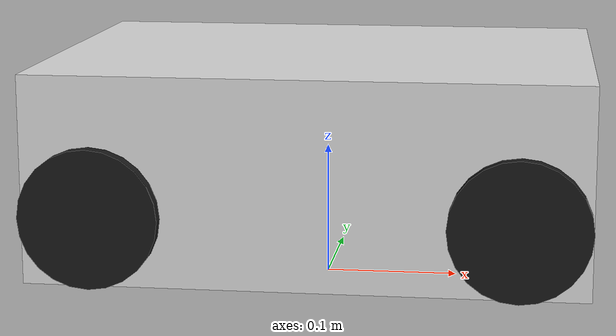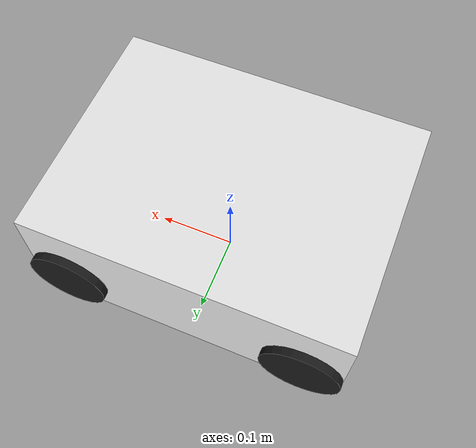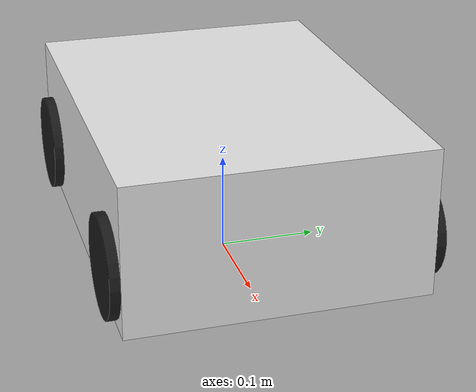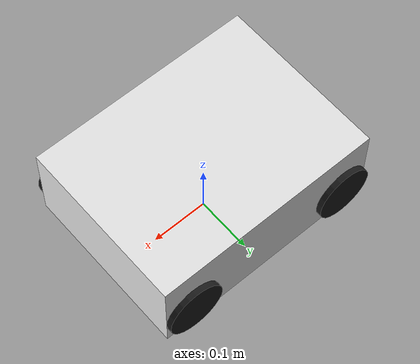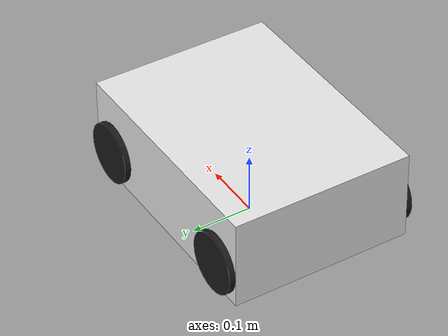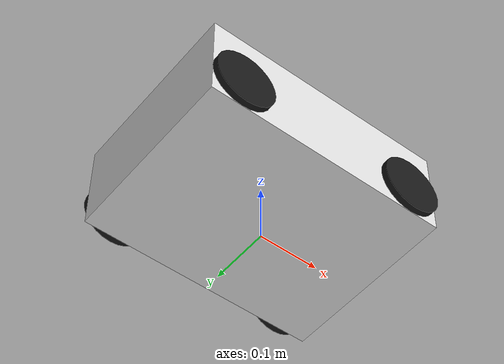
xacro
<?xml version="1.0"?>
<robot xmlns:xacro="http://www.ros.org/wiki/xacro" name="my_custom_robot">

  <xacro:property name="chassis_length" value="0.4" />
  <xacro:property name="chassis_width" value="0.3" />
  <xacro:property name="chassis_height" value="0.15" />
  <xacro:property name="chassis_mass" value="5.0" />
  <xacro:property name="base_color" value="White" />

  <xacro:property name="wheel_radius" value="0.05" />
  <xacro:property name="wheel_width" value="0.04" />
  <xacro:property name="wheel_mass" value="0.5" />
  <xacro:property name="wheel_color" value="Black" />

  <xacro:property name="wheelbase_x" value="0.3" />
  <xacro:property name="track_width" value="0.28" />
  <xacro:property name="wheel_z_offset" value="${-chassis_height/2 + wheel_radius}" />
  <xacro:property name="steer_link_length" value="0.02" />
  <xacro:property name="steer_link_radius" value="0.01" />
  <xacro:property name="steer_link_mass" value="0.1" />
  <xacro:property name="max_steer_angle" value="${pi/6}" />

  <xacro:macro name="box_inertia" params="m l w h">
    <inertia ixx="${m/12 * (h*h + l*l)}" ixy="0.0" ixz="0.0"
             iyy="${m/12 * (w*w + l*l)}" iyz="0.0"
             izz="${m/12 * (w*w + h*h)}" />
  </xacro:macro>

  <xacro:macro name="cylinder_inertia" params="m r h">
    <inertia ixx="${m/12 * (3*r*r + h*h)}" ixy="0.0" ixz="0.0"
             iyy="${m/12 * (3*r*r + h*h)}" iyz="0.0"
             izz="${m/2 * r*r}" />
  </xacro:macro>

  <xacro:macro name="sphere_inertia" params="m r">
    <inertia ixx="${2*m/5 * r*r}" ixy="0.0" ixz="0.0"
             iyy="${2*m/5 * r*r}" iyz="0.0"
             izz="${2*m/5 * r*r}" />
  </xacro:macro>

  <material name="PlasticWhite">
      <color rgba="0.9 0.9 0.9 1.0"/>
  </material>

  <material name="PlasticBlack">
      <color rgba="0.1 0.1 0.1 1.0"/>
  </material>

  <material name="PlasticRed">
      <color rgba="0.8 0.1 0.1 1.0"/>
  </material>

  <link name="base_footprint"/>

  <link name="base_link">
    <visual>
      <origin xyz="0 0 0" rpy="0 0 0" />
      <geometry>
        <box size="${chassis_length} ${chassis_width} ${chassis_height}"/>
      </geometry>
      <material name="PlasticWhite"/>
    </visual>
    <collision>
      <origin xyz="0 0 0" rpy="0 0 0" />
      <geometry>
        <box size="${chassis_length} ${chassis_width} ${chassis_height}"/>
      </geometry>
    </collision>
    <inertial>
      <origin xyz="0 0 0" rpy="0 0 0"/>
      <mass value="${chassis_mass}"/>
      <xacro:box_inertia m="${chassis_mass}" l="${chassis_length}" w="${chassis_width}" h="${chassis_height}" />
    </inertial>
  </link>

  <joint name="base_footprint_joint" type="fixed">
    <parent link="base_footprint"/>
    <child link="base_link"/>
    <origin xyz="0 0 ${chassis_height/2 - wheel_z_offset}" rpy="0 0 0"/>
  </joint>

  <xacro:macro name="wheel" params="prefix reflect">
    <link name="${prefix}_wheel_link">
      <visual>
        <origin xyz="0 0 0" rpy="${pi/2} 0 0" />
        <geometry>
          <cylinder radius="${wheel_radius}" length="${wheel_width}"/>
        </geometry>
        <material name="PlasticBlack"/>
      </visual>
      <collision>
        <origin xyz="0 0 0" rpy="${pi/2} 0 0" />
        <geometry>
          <cylinder radius="${wheel_radius}" length="${wheel_width}"/>
        </geometry>
      </collision>
      <inertial>
        <origin xyz="0 0 0" rpy="${pi/2} 0 0"/>
        <mass value="${wheel_mass}"/>
        <xacro:cylinder_inertia m="${wheel_mass}" r="${wheel_radius}" h="${wheel_width}" />
      </inertial>
    </link>

    <joint name="${prefix}_wheel_joint" type="continuous">
      <parent link="${prefix}_steer_link"/>
      <child link="${prefix}_wheel_link"/>
      <origin xyz="0 0 0" rpy="0 0 0"/>
      <axis xyz="0 1 0"/>
      <limit effort="100" velocity="100"/>
    </joint>

    <transmission name="${prefix}_wheel_transmission">
      <type>transmission_interface/SimpleTransmission</type>
      <joint name="${prefix}_wheel_joint">
        <hardwareInterface>hardware_interface/VelocityJointInterface</hardwareInterface>
      </joint>
      <actuator name="${prefix}_wheel_motor">
        <hardwareInterface>hardware_interface/VelocityJointInterface</hardwareInterface>
        <mechanicalReduction>1</mechanicalReduction>
      </actuator>
    </transmission>

  </xacro:macro>

  <xacro:macro name="steering_link" params="prefix reflect_steer">
    <link name="${prefix}_steer_link">
      <visual>
        <origin xyz="0 0 0" rpy="0 0 0" />
        <geometry>
          <cylinder radius="${steer_link_radius}" length="${steer_link_length}"/>
        </geometry>
        <material name="PlasticRed"/>
      </visual>
      <collision>
        <origin xyz="0 0 0" rpy="0 0 0" />
        <geometry>
          <cylinder radius="${steer_link_radius}" length="${steer_link_length}"/>
        </geometry>
      </collision>
      <inertial>
        <origin xyz="0 0 0" rpy="0 0 0"/>
        <mass value="${steer_link_mass}"/>
        <xacro:cylinder_inertia m="${steer_link_mass}" r="${steer_link_radius}" h="${steer_link_length}" />
      </inertial>
    </link>

    <joint name="${prefix}_steer_joint" type="revolute">
      <parent link="base_link"/>
      <child link="${prefix}_steer_link"/>
      <origin xyz="${wheelbase_x/2} ${reflect_steer*track_width/2} ${wheel_z_offset}" rpy="0 0 0"/>
      <axis xyz="0 0 1"/> <limit lower="${-max_steer_angle}" upper="${max_steer_angle}" effort="100" velocity="10"/>
    </joint>

    <transmission name="${prefix}_steer_transmission">
        <type>transmission_interface/SimpleTransmission</type>
        <joint name="${prefix}_steer_joint">
            <hardwareInterface>hardware_interface/PositionJointInterface</hardwareInterface>
        </joint>
        <actuator name="${prefix}_steer_motor">
            <hardwareInterface>hardware_interface/PositionJointInterface</hardwareInterface>
            <mechanicalReduction>1</mechanicalReduction>
        </actuator>
    </transmission>

    <xacro:wheel prefix="${prefix}" reflect="${reflect_steer}"/>

  </xacro:macro>

  <xacro:macro name="rear_wheel" params="prefix reflect">
      <link name="${prefix}_steer_link"/> <joint name="${prefix}_dummy_fixed_joint" type="fixed">
          <parent link="base_link"/>
          <child link="${prefix}_steer_link"/>
          <origin xyz="${-wheelbase_x/2} ${reflect*track_width/2} ${wheel_z_offset}" rpy="0 0 0"/>
      </joint>
      <xacro:wheel prefix="${prefix}" reflect="${reflect}"/>
  </xacro:macro>

  <xacro:steering_link prefix="front_left" reflect_steer="1" />
  <xacro:steering_link prefix="front_right" reflect_steer="-1" />

  <xacro:rear_wheel prefix="rear_left" reflect="1" />
  <xacro:rear_wheel prefix="rear_right" reflect="-1" />

  <ros2_control name="RealRobot" type="system">
    <hardware>
        <plugin>gazebo_ros2_control/GazeboSystem</plugin>
        </hardware>

    <joint name="front_left_wheel_joint">
        <command_interface name="velocity">
            <param name="min">-10</param> <param name="max">10</param>  </command_interface>
        <state_interface name="position"/>
        <state_interface name="velocity"/>
    </joint>
    <joint name="front_right_wheel_joint">
        <command_interface name="velocity">
            <param name="min">-10</param> <param name="max">10</param>  </command_interface>
        <state_interface name="position"/>
        <state_interface name="velocity"/>
    </joint>
    <joint name="rear_left_wheel_joint">
        <command_interface name="velocity">
            <param name="min">-10</param> <param name="max">10</param>  </command_interface>
        <state_interface name="position"/>
        <state_interface name="velocity"/>
    </joint>
    <joint name="rear_right_wheel_joint">
        <command_interface name="velocity">
            <param name="min">-10</param> <param name="max">10</param>  </command_interface>
        <state_interface name="position"/>
        <state_interface name="velocity"/>
    </joint>

    <joint name="front_left_steer_joint">
        <command_interface name="position">
            <param name="min">${-max_steer_angle}</param> <param name="max">${max_steer_angle}</param>  </command_interface>
        <state_interface name="position"/>
        <state_interface name="velocity"/> </joint>
    <joint name="front_right_steer_joint">
        <command_interface name="position">
            <param name="min">${-max_steer_angle}</param> <param name="max">${max_steer_angle}</param>  </command_interface>
        <state_interface name="position"/>
        <state_interface name="velocity"/>
    </joint>

  </ros2_control>

  <gazebo>
      <plugin filename="libgazebo_ros2_control.so" name="gazebo_ros2_control">
          <robot_param>robot_description</robot_param>
          <robot_param_node>robot_state_publisher</robot_param_node>
          <parameters>$(find your_robot_description_pkg)/config/my_controllers.yaml</parameters>
          </plugin>
  </gazebo>

  <gazebo reference="base_link">
    <material>Gazebo/White</material>
    <mu1>0.2</mu1>
    <mu2>0.2</mu2>
  </gazebo>

  <gazebo reference="front_left_wheel_link">
    <material>Gazebo/Black</material>
    <mu1>1.0</mu1>
    <mu2>1.0</mu2>
  </gazebo>
  <gazebo reference="front_right_wheel_link">
    <material>Gazebo/Black</material>
    <mu1>1.0</mu1>
    <mu2>1.0</mu2>
  </gazebo>
  <gazebo reference="rear_left_wheel_link">
    <material>Gazebo/Black</material>
    <mu1>1.0</mu1>
    <mu2>1.0</mu2>
  </gazebo>
  <gazebo reference="rear_right_wheel_link">
    <material>Gazebo/Black</material>
    <mu1>1.0</mu1>
    <mu2>1.0</mu2>
  </gazebo>

  </robot>
